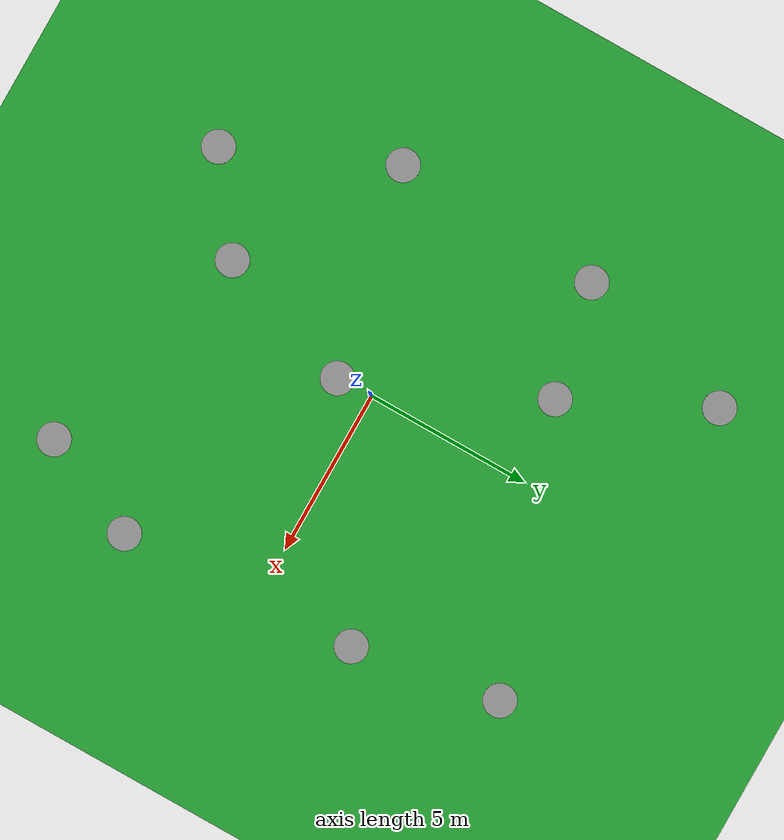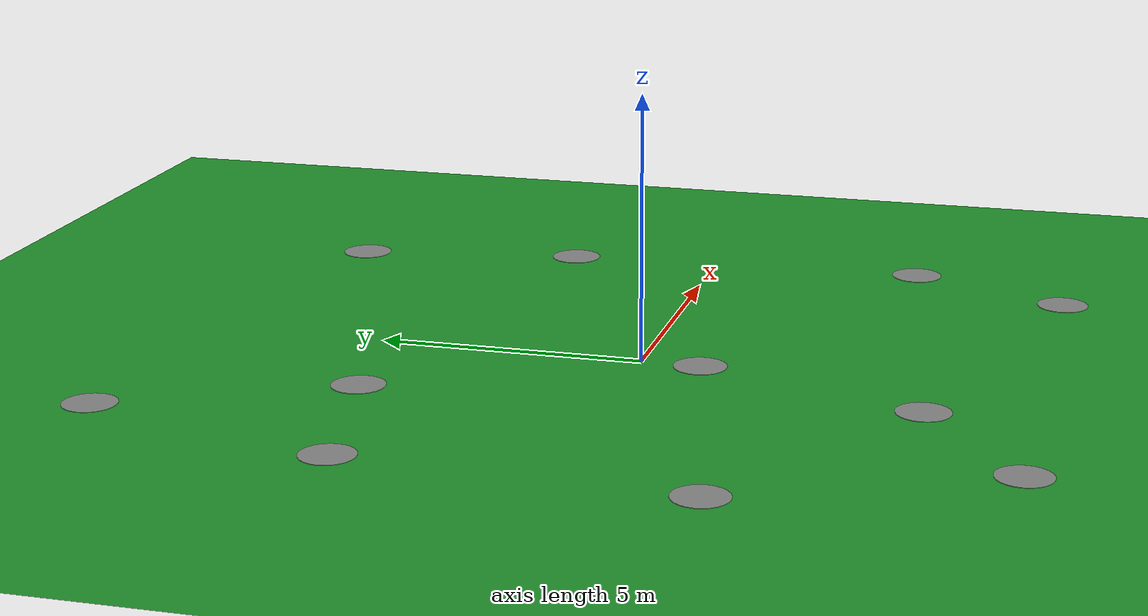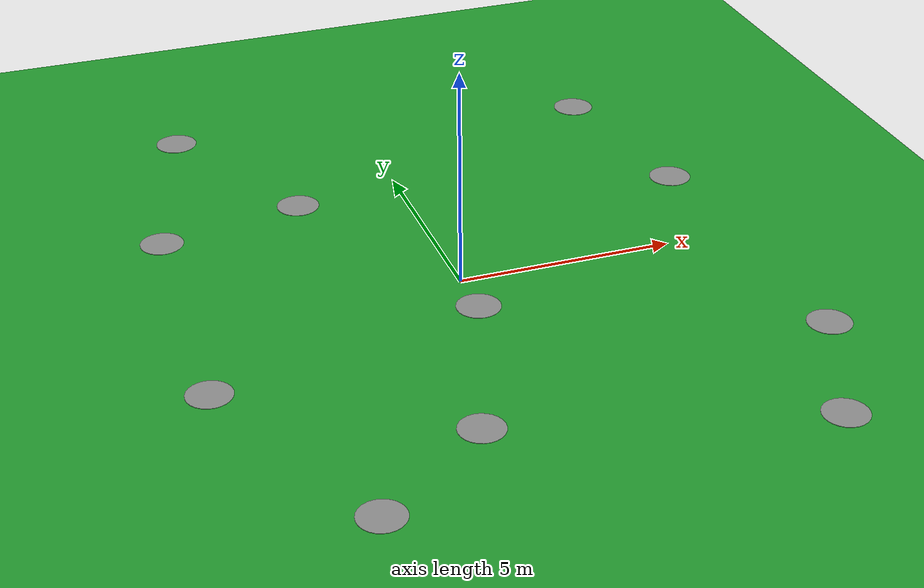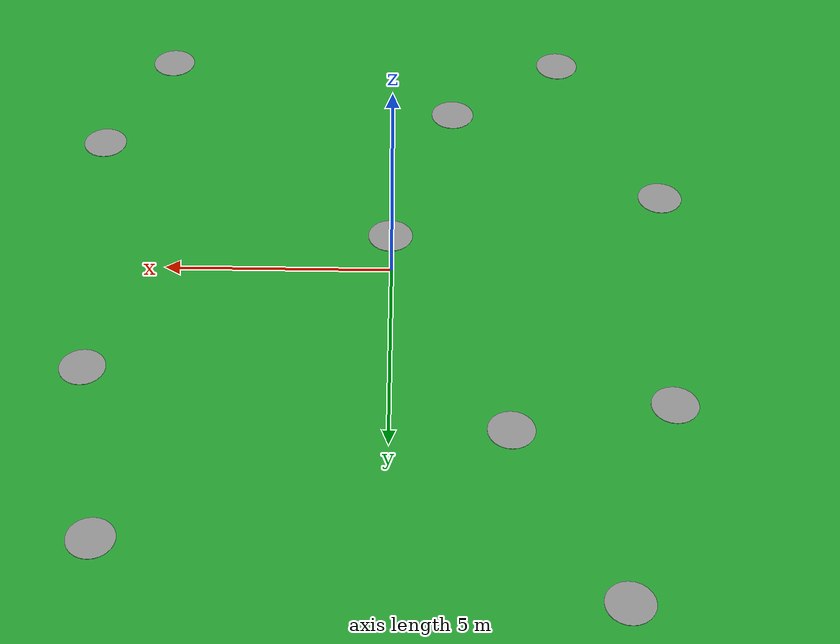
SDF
<?xml version="1.0" ?>
<sdf version="1.5">
  <model name="green_plane">
    <static>true</static>
    <link name="link">
      <collision name="collision">
        <geometry>
          <plane>
            <normal>0 0 1</normal>
            <size>100 100</size>
          </plane>
        </geometry>
        <surface>
          <friction>
            <ode>
              <mu>100</mu>
              <mu2>50</mu2>
            </ode>
          </friction>
        </surface>
      </collision>
      <visual name="visual">
        <cast_shadows>false</cast_shadows>
        <geometry>
          <plane>
            <normal>0 0 1</normal>
            <size>100 100</size>
          </plane>
        </geometry>
        <material>
          <script>
            <uri>file://media/materials/scripts/gazebo.material</uri>
            <name>Gazebo/Green</name>
          </script>
        </material>
      </visual>
    </link>

    <link name='potholes'>
      <inertial>
        <mass>1</mass>
        <inertia>
          <ixx>0.145833</ixx>
          <ixy>0</ixy>
          <ixz>0</ixz>
          <iyy>0.145833</iyy>
          <iyz>0</iyz>
          <izz>0.125</izz>
        </inertia>
        <pose>0 0 0 0 -0 0</pose>
      </inertial>
      <pose>0.031259 -1.09951 -0 0 -0 0</pose>
      <gravity>1</gravity>
      <self_collide>0</self_collide>
      <kinematic>0</kinematic>
      <enable_wind>0</enable_wind>
      <visual name='visual'>
        <pose>0 0 0 0 -0 0</pose>
        <geometry>
          <cylinder>
            <radius>0.5</radius>
            <length>0.01</length>
          </cylinder>
        </geometry>
        <material>
          <lighting>1</lighting>
          <script>
            <uri>file://media/materials/scripts/gazebo.material</uri>
            <name>Gazebo/Grey</name>
          </script>
          <shader type='pixel'>
            <normal_map>__default__</normal_map>
          </shader>
          <ambient>1 1 1 1</ambient>
          <diffuse>1 1 1 1</diffuse>
          <specular>1 1 1 1</specular>
          <emissive>1 1 1 1</emissive>
        </material>
        <transparency>0</transparency>
        <cast_shadows>1</cast_shadows>
      </visual>
      <collision name='collision'>
        <laser_retro>0</laser_retro>
        <max_contacts>10</max_contacts>
        <pose>0 0 0 0 -0 0</pose>
        <geometry>
          <cylinder>
            <radius>0.5</radius>
            <length>0.01</length>
          </cylinder>
        </geometry>
        <surface>
          <friction>
            <ode>
              <mu>1</mu>
              <mu2>1</mu2>
              <fdir1>0 0 0</fdir1>
              <slip1>0</slip1>
              <slip2>0</slip2>
            </ode>
            <torsional>
              <coefficient>1</coefficient>
              <patch_radius>0</patch_radius>
              <surface_radius>0</surface_radius>
              <use_patch_radius>1</use_patch_radius>
              <ode>
                <slip>0</slip>
              </ode>
            </torsional>
          </friction>
          <bounce>
            <restitution_coefficient>0</restitution_coefficient>
            <threshold>1e+06</threshold>
          </bounce>
          <contact>
            <collide_without_contact>0</collide_without_contact>
            <collide_without_contact_bitmask>1</collide_without_contact_bitmask>
            <collide_bitmask>1</collide_bitmask>
            <ode>
              <soft_cfm>0</soft_cfm>
              <soft_erp>0.2</soft_erp>
              <kp>1e+13</kp>
              <kd>1</kd>
              <max_vel>0.01</max_vel>
              <min_depth>0</min_depth>
            </ode>
            <bullet>
              <split_impulse>1</split_impulse>
              <split_impulse_penetration_threshold>-0.01</split_impulse_penetration_threshold>
              <soft_cfm>0</soft_cfm>
              <soft_erp>0.2</soft_erp>
              <kp>1e+13</kp>
              <kd>1</kd>
            </bullet>
          </contact>
        </surface>
      </collision>
    </link>
    <link name='link_0_clone'>
      <inertial>
        <mass>1</mass>
        <inertia>
          <ixx>0.145833</ixx>
          <ixy>0</ixy>
          <ixz>0</ixz>
          <iyy>0.145833</iyy>
          <iyz>0</iyz>
          <izz>0.125</izz>
        </inertia>
        <pose>0 0 0 0 -0 0</pose>
      </inertial>
      <pose>-2.49838 4.57653 -0 0 -0 0</pose>
      <gravity>1</gravity>
      <self_collide>0</self_collide>
      <kinematic>0</kinematic>
      <enable_wind>0</enable_wind>
      <visual name='visual'>
        <pose>0 0 0 0 -0 0</pose>
        <geometry>
          <cylinder>
            <radius>0.5</radius>
            <length>0.01</length>
          </cylinder>
        </geometry>
        <material>
          <lighting>1</lighting>
          <script>
            <uri>file://media/materials/scripts/gazebo.material</uri>
            <name>Gazebo/Grey</name>
          </script>
          <shader type='pixel'>
            <normal_map>__default__</normal_map>
          </shader>
          <ambient>1 1 1 1</ambient>
          <diffuse>1 1 1 1</diffuse>
          <specular>1 1 1 1</specular>
          <emissive>1 1 1 1</emissive>
        </material>
        <transparency>0</transparency>
        <cast_shadows>1</cast_shadows>
      </visual>
      <collision name='collision'>
        <laser_retro>0</laser_retro>
        <max_contacts>10</max_contacts>
        <pose>0 0 0 0 -0 0</pose>
        <geometry>
          <cylinder>
            <radius>0.5</radius>
            <length>0.01</length>
          </cylinder>
        </geometry>
        <surface>
          <friction>
            <ode>
              <mu>1</mu>
              <mu2>1</mu2>
              <fdir1>0 0 0</fdir1>
              <slip1>0</slip1>
              <slip2>0</slip2>
            </ode>
            <torsional>
              <coefficient>1</coefficient>
              <patch_radius>0</patch_radius>
              <surface_radius>0</surface_radius>
              <use_patch_radius>1</use_patch_radius>
              <ode>
                <slip>0</slip>
              </ode>
            </torsional>
          </friction>
          <bounce>
            <restitution_coefficient>0</restitution_coefficient>
            <threshold>1e+06</threshold>
          </bounce>
          <contact>
            <collide_without_contact>0</collide_without_contact>
            <collide_without_contact_bitmask>1</collide_without_contact_bitmask>
            <collide_bitmask>1</collide_bitmask>
            <ode>
              <soft_cfm>0</soft_cfm>
              <soft_erp>0.2</soft_erp>
              <kp>1e+13</kp>
              <kd>1</kd>
              <max_vel>0.01</max_vel>
              <min_depth>0</min_depth>
            </ode>
            <bullet>
              <split_impulse>1</split_impulse>
              <split_impulse_penetration_threshold>-0.01</split_impulse_penetration_threshold>
              <soft_cfm>0</soft_cfm>
              <soft_erp>0.2</soft_erp>
              <kp>1e+13</kp>
              <kd>1</kd>
            </bullet>
          </contact>
        </surface>
      </collision>
    </link>
    <link name='link_0_clone_0'>
      <inertial>
        <mass>1</mass>
        <inertia>
          <ixx>0.145833</ixx>
          <ixy>0</ixy>
          <ixz>0</ixz>
          <iyy>0.145833</iyy>
          <iyz>0</iyz>
          <izz>0.125</izz>
        </inertia>
        <pose>0 0 0 0 -0 0</pose>
      </inertial>
      <pose>5.72944 7.42983 -0 0 -0 0</pose>
      <gravity>1</gravity>
      <self_collide>0</self_collide>
      <kinematic>0</kinematic>
      <enable_wind>0</enable_wind>
      <visual name='visual'>
        <pose>0 0 0 0 -0 0</pose>
        <geometry>
          <cylinder>
            <radius>0.5</radius>
            <length>0.01</length>
          </cylinder>
        </geometry>
        <material>
          <lighting>1</lighting>
          <script>
            <uri>file://media/materials/scripts/gazebo.material</uri>
            <name>Gazebo/Grey</name>
          </script>
          <shader type='pixel'>
            <normal_map>__default__</normal_map>
          </shader>
          <ambient>1 1 1 1</ambient>
          <diffuse>1 1 1 1</diffuse>
          <specular>1 1 1 1</specular>
          <emissive>1 1 1 1</emissive>
        </material>
        <transparency>0</transparency>
        <cast_shadows>1</cast_shadows>
      </visual>
      <collision name='collision'>
        <laser_retro>0</laser_retro>
        <max_contacts>10</max_contacts>
        <pose>0 0 0 0 -0 0</pose>
        <geometry>
          <cylinder>
            <radius>0.5</radius>
            <length>0.01</length>
          </cylinder>
        </geometry>
        <surface>
          <friction>
            <ode>
              <mu>1</mu>
              <mu2>1</mu2>
              <fdir1>0 0 0</fdir1>
              <slip1>0</slip1>
              <slip2>0</slip2>
            </ode>
            <torsional>
              <coefficient>1</coefficient>
              <patch_radius>0</patch_radius>
              <surface_radius>0</surface_radius>
              <use_patch_radius>1</use_patch_radius>
              <ode>
                <slip>0</slip>
              </ode>
            </torsional>
          </friction>
          <bounce>
            <restitution_coefficient>0</restitution_coefficient>
            <threshold>1e+06</threshold>
          </bounce>
          <contact>
            <collide_without_contact>0</collide_without_contact>
            <collide_without_contact_bitmask>1</collide_without_contact_bitmask>
            <collide_bitmask>1</collide_bitmask>
            <ode>
              <soft_cfm>0</soft_cfm>
              <soft_erp>0.2</soft_erp>
              <kp>1e+13</kp>
              <kd>1</kd>
              <max_vel>0.01</max_vel>
              <min_depth>0</min_depth>
            </ode>
            <bullet>
              <split_impulse>1</split_impulse>
              <split_impulse_penetration_threshold>-0.01</split_impulse_penetration_threshold>
              <soft_cfm>0</soft_cfm>
              <soft_erp>0.2</soft_erp>
              <kp>1e+13</kp>
              <kd>1</kd>
            </bullet>
          </contact>
        </surface>
      </collision>
    </link>
    <link name='link_0_clone_1'>
      <inertial>
        <mass>1</mass>
        <inertia>
          <ixx>0.145833</ixx>
          <ixy>0</ixy>
          <ixz>0</ixz>
          <iyy>0.145833</iyy>
          <iyz>0</iyz>
          <izz>0.125</izz>
        </inertia>
        <pose>0 0 0 0 -0 0</pose>
      </inertial>
      <pose>6.46924 2.99584 -0 0 -0 0</pose>
      <gravity>1</gravity>
      <self_collide>0</self_collide>
      <kinematic>0</kinematic>
      <enable_wind>0</enable_wind>
      <visual name='visual'>
        <pose>0 0 0 0 -0 0</pose>
        <geometry>
          <cylinder>
            <radius>0.5</radius>
            <length>0.01</length>
          </cylinder>
        </geometry>
        <material>
          <lighting>1</lighting>
          <script>
            <uri>file://media/materials/scripts/gazebo.material</uri>
            <name>Gazebo/Grey</name>
          </script>
          <shader type='pixel'>
            <normal_map>__default__</normal_map>
          </shader>
          <ambient>1 1 1 1</ambient>
          <diffuse>1 1 1 1</diffuse>
          <specular>1 1 1 1</specular>
          <emissive>1 1 1 1</emissive>
        </material>
        <transparency>0</transparency>
        <cast_shadows>1</cast_shadows>
      </visual>
      <collision name='collision'>
        <laser_retro>0</laser_retro>
        <max_contacts>10</max_contacts>
        <pose>0 0 0 0 -0 0</pose>
        <geometry>
          <cylinder>
            <radius>0.5</radius>
            <length>0.01</length>
          </cylinder>
        </geometry>
        <surface>
          <friction>
            <ode>
              <mu>1</mu>
              <mu2>1</mu2>
              <fdir1>0 0 0</fdir1>
              <slip1>0</slip1>
              <slip2>0</slip2>
            </ode>
            <torsional>
              <coefficient>1</coefficient>
              <patch_radius>0</patch_radius>
              <surface_radius>0</surface_radius>
              <use_patch_radius>1</use_patch_radius>
              <ode>
                <slip>0</slip>
              </ode>
            </torsional>
          </friction>
          <bounce>
            <restitution_coefficient>0</restitution_coefficient>
            <threshold>1e+06</threshold>
          </bounce>
          <contact>
            <collide_without_contact>0</collide_without_contact>
            <collide_without_contact_bitmask>1</collide_without_contact_bitmask>
            <collide_bitmask>1</collide_bitmask>
            <ode>
              <soft_cfm>0</soft_cfm>
              <soft_erp>0.2</soft_erp>
              <kp>1e+13</kp>
              <kd>1</kd>
              <max_vel>0.01</max_vel>
              <min_depth>0</min_depth>
            </ode>
            <bullet>
              <split_impulse>1</split_impulse>
              <split_impulse_penetration_threshold>-0.01</split_impulse_penetration_threshold>
              <soft_cfm>0</soft_cfm>
              <soft_erp>0.2</soft_erp>
              <kp>1e+13</kp>
              <kd>1</kd>
            </bullet>
          </contact>
        </surface>
      </collision>
    </link>
    <link name='link_0_clone_2'>
      <inertial>
        <mass>1</mass>
        <inertia>
          <ixx>0.145833</ixx>
          <ixy>0</ixy>
          <ixz>0</ixz>
          <iyy>0.145833</iyy>
          <iyz>0</iyz>
          <izz>0.125</izz>
        </inertia>
        <pose>0 0 0 0 -0 0</pose>
      </inertial>
      <pose>-6.1582 -2.45288 -0 0 -0 0</pose>
      <gravity>1</gravity>
      <self_collide>0</self_collide>
      <kinematic>0</kinematic>
      <enable_wind>0</enable_wind>
      <visual name='visual'>
        <pose>0 0 0 0 -0 0</pose>
        <geometry>
          <cylinder>
            <radius>0.5</radius>
            <length>0.01</length>
          </cylinder>
        </geometry>
        <material>
          <lighting>1</lighting>
          <script>
            <uri>file://media/materials/scripts/gazebo.material</uri>
            <name>Gazebo/Grey</name>
          </script>
          <shader type='pixel'>
            <normal_map>__default__</normal_map>
          </shader>
          <ambient>1 1 1 1</ambient>
          <diffuse>1 1 1 1</diffuse>
          <specular>1 1 1 1</specular>
          <emissive>1 1 1 1</emissive>
        </material>
        <transparency>0</transparency>
        <cast_shadows>1</cast_shadows>
      </visual>
      <collision name='collision'>
        <laser_retro>0</laser_retro>
        <max_contacts>10</max_contacts>
        <pose>0 0 0 0 -0 0</pose>
        <geometry>
          <cylinder>
            <radius>0.5</radius>
            <length>0.01</length>
          </cylinder>
        </geometry>
        <surface>
          <friction>
            <ode>
              <mu>1</mu>
              <mu2>1</mu2>
              <fdir1>0 0 0</fdir1>
              <slip1>0</slip1>
              <slip2>0</slip2>
            </ode>
            <torsional>
              <coefficient>1</coefficient>
              <patch_radius>0</patch_radius>
              <surface_radius>0</surface_radius>
              <use_patch_radius>1</use_patch_radius>
              <ode>
                <slip>0</slip>
              </ode>
            </torsional>
          </friction>
          <bounce>
            <restitution_coefficient>0</restitution_coefficient>
            <threshold>1e+06</threshold>
          </bounce>
          <contact>
            <collide_without_contact>0</collide_without_contact>
            <collide_without_contact_bitmask>1</collide_without_contact_bitmask>
            <collide_bitmask>1</collide_bitmask>
            <ode>
              <soft_cfm>0</soft_cfm>
              <soft_erp>0.2</soft_erp>
              <kp>1e+13</kp>
              <kd>1</kd>
              <max_vel>0.01</max_vel>
              <min_depth>0</min_depth>
            </ode>
            <bullet>
              <split_impulse>1</split_impulse>
              <split_impulse_penetration_threshold>-0.01</split_impulse_penetration_threshold>
              <soft_cfm>0</soft_cfm>
              <soft_erp>0.2</soft_erp>
              <kp>1e+13</kp>
              <kd>1</kd>
            </bullet>
          </contact>
        </surface>
      </collision>
    </link>
    <link name='link_0_clone_3'>
      <inertial>
        <mass>1</mass>
        <inertia>
          <ixx>0.145833</ixx>
          <ixy>0</ixy>
          <ixz>0</ixz>
          <iyy>0.145833</iyy>
          <iyz>0</iyz>
          <izz>0.125</izz>
        </inertia>
        <pose>0 0 0 0 -0 0</pose>
      </inertial>
      <pose>-1.41884 -5.34785 -0 0 -0 0</pose>
      <gravity>1</gravity>
      <self_collide>0</self_collide>
      <kinematic>0</kinematic>
      <enable_wind>0</enable_wind>
      <visual name='visual'>
        <pose>0 0 0 0 -0 0</pose>
        <geometry>
          <cylinder>
            <radius>0.5</radius>
            <length>0.01</length>
          </cylinder>
        </geometry>
        <material>
          <lighting>1</lighting>
          <script>
            <uri>file://media/materials/scripts/gazebo.material</uri>
            <name>Gazebo/Grey</name>
          </script>
          <shader type='pixel'>
            <normal_map>__default__</normal_map>
          </shader>
          <ambient>1 1 1 1</ambient>
          <diffuse>1 1 1 1</diffuse>
          <specular>1 1 1 1</specular>
          <emissive>1 1 1 1</emissive>
        </material>
        <transparency>0</transparency>
        <cast_shadows>1</cast_shadows>
      </visual>
      <collision name='collision'>
        <laser_retro>0</laser_retro>
        <max_contacts>10</max_contacts>
        <pose>0 0 0 0 -0 0</pose>
        <geometry>
          <cylinder>
            <radius>0.5</radius>
            <length>0.01</length>
          </cylinder>
        </geometry>
        <surface>
          <friction>
            <ode>
              <mu>1</mu>
              <mu2>1</mu2>
              <fdir1>0 0 0</fdir1>
              <slip1>0</slip1>
              <slip2>0</slip2>
            </ode>
            <torsional>
              <coefficient>1</coefficient>
              <patch_radius>0</patch_radius>
              <surface_radius>0</surface_radius>
              <use_patch_radius>1</use_patch_radius>
              <ode>
                <slip>0</slip>
              </ode>
            </torsional>
          </friction>
          <bounce>
            <restitution_coefficient>0</restitution_coefficient>
            <threshold>1e+06</threshold>
          </bounce>
          <contact>
            <collide_without_contact>0</collide_without_contact>
            <collide_without_contact_bitmask>1</collide_without_contact_bitmask>
            <collide_bitmask>1</collide_bitmask>
            <ode>
              <soft_cfm>0</soft_cfm>
              <soft_erp>0.2</soft_erp>
              <kp>1e+13</kp>
              <kd>1</kd>
              <max_vel>0.01</max_vel>
              <min_depth>0</min_depth>
            </ode>
            <bullet>
              <split_impulse>1</split_impulse>
              <split_impulse_penetration_threshold>-0.01</split_impulse_penetration_threshold>
              <soft_cfm>0</soft_cfm>
              <soft_erp>0.2</soft_erp>
              <kp>1e+13</kp>
              <kd>1</kd>
            </bullet>
          </contact>
        </surface>
      </collision>
    </link>
    <link name='link_0_clone_4'>
      <inertial>
        <mass>1</mass>
        <inertia>
          <ixx>0.145833</ixx>
          <ixy>0</ixy>
          <ixz>0</ixz>
          <iyy>0.145833</iyy>
          <iyz>0</iyz>
          <izz>0.125</izz>
        </inertia>
        <pose>0 0 0 0 -0 0</pose>
      </inertial>
      <pose>-4.03537 -7.27868 -0 0 -0 0</pose>
      <gravity>1</gravity>
      <self_collide>0</self_collide>
      <kinematic>0</kinematic>
      <enable_wind>0</enable_wind>
      <visual name='visual'>
        <pose>0 0 0 0 -0 0</pose>
        <geometry>
          <cylinder>
            <radius>0.5</radius>
            <length>0.01</length>
          </cylinder>
        </geometry>
        <material>
          <lighting>1</lighting>
          <script>
            <uri>file://media/materials/scripts/gazebo.material</uri>
            <name>Gazebo/Grey</name>
          </script>
          <shader type='pixel'>
            <normal_map>__default__</normal_map>
          </shader>
          <ambient>1 1 1 1</ambient>
          <diffuse>1 1 1 1</diffuse>
          <specular>1 1 1 1</specular>
          <emissive>1 1 1 1</emissive>
        </material>
        <transparency>0</transparency>
        <cast_shadows>1</cast_shadows>
      </visual>
      <collision name='collision'>
        <laser_retro>0</laser_retro>
        <max_contacts>10</max_contacts>
        <pose>0 0 0 0 -0 0</pose>
        <geometry>
          <cylinder>
            <radius>0.5</radius>
            <length>0.01</length>
          </cylinder>
        </geometry>
        <surface>
          <friction>
            <ode>
              <mu>1</mu>
              <mu2>1</mu2>
              <fdir1>0 0 0</fdir1>
              <slip1>0</slip1>
              <slip2>0</slip2>
            </ode>
            <torsional>
              <coefficient>1</coefficient>
              <patch_radius>0</patch_radius>
              <surface_radius>0</surface_radius>
              <use_patch_radius>1</use_patch_radius>
              <ode>
                <slip>0</slip>
              </ode>
            </torsional>
          </friction>
          <bounce>
            <restitution_coefficient>0</restitution_coefficient>
            <threshold>1e+06</threshold>
          </bounce>
          <contact>
            <collide_without_contact>0</collide_without_contact>
            <collide_without_contact_bitmask>1</collide_without_contact_bitmask>
            <collide_bitmask>1</collide_bitmask>
            <ode>
              <soft_cfm>0</soft_cfm>
              <soft_erp>0.2</soft_erp>
              <kp>1e+13</kp>
              <kd>1</kd>
              <max_vel>0.01</max_vel>
              <min_depth>0</min_depth>
            </ode>
            <bullet>
              <split_impulse>1</split_impulse>
              <split_impulse_penetration_threshold>-0.01</split_impulse_penetration_threshold>
              <soft_cfm>0</soft_cfm>
              <soft_erp>0.2</soft_erp>
              <kp>1e+13</kp>
              <kd>1</kd>
            </bullet>
          </contact>
        </surface>
      </collision>
    </link>
    <link name='link_0_clone_5'>
      <inertial>
        <mass>1</mass>
        <inertia>
          <ixx>0.145833</ixx>
          <ixy>0</ixy>
          <ixz>0</ixz>
          <iyy>0.145833</iyy>
          <iyz>0</iyz>
          <izz>0.125</izz>
        </inertia>
        <pose>0 0 0 0 -0 0</pose>
      </inertial>
      <pose>5.50176 -7.24971 -0 0 -0 0</pose>
      <gravity>1</gravity>
      <self_collide>0</self_collide>
      <kinematic>0</kinematic>
      <enable_wind>0</enable_wind>
      <visual name='visual'>
        <pose>0 0 0 0 -0 0</pose>
        <geometry>
          <cylinder>
            <radius>0.5</radius>
            <length>0.01</length>
          </cylinder>
        </geometry>
        <material>
          <lighting>1</lighting>
          <script>
            <uri>file://media/materials/scripts/gazebo.material</uri>
            <name>Gazebo/Grey</name>
          </script>
          <shader type='pixel'>
            <normal_map>__default__</normal_map>
          </shader>
          <ambient>1 1 1 1</ambient>
          <diffuse>1 1 1 1</diffuse>
          <specular>1 1 1 1</specular>
          <emissive>1 1 1 1</emissive>
        </material>
        <transparency>0</transparency>
        <cast_shadows>1</cast_shadows>
      </visual>
      <collision name='collision'>
        <laser_retro>0</laser_retro>
        <max_contacts>10</max_contacts>
        <pose>0 0 0 0 -0 0</pose>
        <geometry>
          <cylinder>
            <radius>0.5</radius>
            <length>0.01</length>
          </cylinder>
        </geometry>
        <surface>
          <friction>
            <ode>
              <mu>1</mu>
              <mu2>1</mu2>
              <fdir1>0 0 0</fdir1>
              <slip1>0</slip1>
              <slip2>0</slip2>
            </ode>
            <torsional>
              <coefficient>1</coefficient>
              <patch_radius>0</patch_radius>
              <surface_radius>0</surface_radius>
              <use_patch_radius>1</use_patch_radius>
              <ode>
                <slip>0</slip>
              </ode>
            </torsional>
          </friction>
          <bounce>
            <restitution_coefficient>0</restitution_coefficient>
            <threshold>1e+06</threshold>
          </bounce>
          <contact>
            <collide_without_contact>0</collide_without_contact>
            <collide_without_contact_bitmask>1</collide_without_contact_bitmask>
            <collide_bitmask>1</collide_bitmask>
            <ode>
              <soft_cfm>0</soft_cfm>
              <soft_erp>0.2</soft_erp>
              <kp>1e+13</kp>
              <kd>1</kd>
              <max_vel>0.01</max_vel>
              <min_depth>0</min_depth>
            </ode>
            <bullet>
              <split_impulse>1</split_impulse>
              <split_impulse_penetration_threshold>-0.01</split_impulse_penetration_threshold>
              <soft_cfm>0</soft_cfm>
              <soft_erp>0.2</soft_erp>
              <kp>1e+13</kp>
              <kd>1</kd>
            </bullet>
          </contact>
        </surface>
      </collision>
    </link>
    <link name='link_0_clone_6'>
      <inertial>
        <mass>1</mass>
        <inertia>
          <ixx>0.145833</ixx>
          <ixy>0</ixy>
          <ixz>0</ixz>
          <iyy>0.145833</iyy>
          <iyz>0</iyz>
          <izz>0.125</izz>
        </inertia>
        <pose>0 0 0 0 -0 0</pose>
      </inertial>
      <pose>6.85476 -4.19351 -0 0 -0 0</pose>
      <gravity>1</gravity>
      <self_collide>0</self_collide>
      <kinematic>0</kinematic>
      <enable_wind>0</enable_wind>
      <visual name='visual'>
        <pose>0 0 0 0 -0 0</pose>
        <geometry>
          <cylinder>
            <radius>0.5</radius>
            <length>0.01</length>
          </cylinder>
        </geometry>
        <material>
          <lighting>1</lighting>
          <script>
            <uri>file://media/materials/scripts/gazebo.material</uri>
            <name>Gazebo/Grey</name>
          </script>
          <shader type='pixel'>
            <normal_map>__default__</normal_map>
          </shader>
          <ambient>1 1 1 1</ambient>
          <diffuse>1 1 1 1</diffuse>
          <specular>1 1 1 1</specular>
          <emissive>1 1 1 1</emissive>
        </material>
        <transparency>0</transparency>
        <cast_shadows>1</cast_shadows>
      </visual>
      <collision name='collision'>
        <laser_retro>0</laser_retro>
        <max_contacts>10</max_contacts>
        <pose>0 0 0 0 -0 0</pose>
        <geometry>
          <cylinder>
            <radius>0.5</radius>
            <length>0.01</length>
          </cylinder>
        </geometry>
        <surface>
          <friction>
            <ode>
              <mu>1</mu>
              <mu2>1</mu2>
              <fdir1>0 0 0</fdir1>
              <slip1>0</slip1>
              <slip2>0</slip2>
            </ode>
            <torsional>
              <coefficient>1</coefficient>
              <patch_radius>0</patch_radius>
              <surface_radius>0</surface_radius>
              <use_patch_radius>1</use_patch_radius>
              <ode>
                <slip>0</slip>
              </ode>
            </torsional>
          </friction>
          <bounce>
            <restitution_coefficient>0</restitution_coefficient>
            <threshold>1e+06</threshold>
          </bounce>
          <contact>
            <collide_without_contact>0</collide_without_contact>
            <collide_without_contact_bitmask>1</collide_without_contact_bitmask>
            <collide_bitmask>1</collide_bitmask>
            <ode>
              <soft_cfm>0</soft_cfm>
              <soft_erp>0.2</soft_erp>
              <kp>1e+13</kp>
              <kd>1</kd>
              <max_vel>0.01</max_vel>
              <min_depth>0</min_depth>
            </ode>
            <bullet>
              <split_impulse>1</split_impulse>
              <split_impulse_penetration_threshold>-0.01</split_impulse_penetration_threshold>
              <soft_cfm>0</soft_cfm>
              <soft_erp>0.2</soft_erp>
              <kp>1e+13</kp>
              <kd>1</kd>
            </bullet>
          </contact>
        </surface>
      </collision>
    </link>
    <link name='link_0_clone_7'>
      <inertial>
        <mass>1</mass>
        <inertia>
          <ixx>0.145833</ixx>
          <ixy>0</ixy>
          <ixz>0</ixz>
          <iyy>0.145833</iyy>
          <iyz>0</iyz>
          <izz>0.125</izz>
        </inertia>
        <pose>0 0 0 0 -0 0</pose>
      </inertial>
      <pose>-4.57892 8.76963 -0 0 -0 0</pose>
      <gravity>1</gravity>
      <self_collide>0</self_collide>
      <kinematic>0</kinematic>
      <enable_wind>0</enable_wind>
      <visual name='visual'>
        <pose>0 0 0 0 -0 0</pose>
        <geometry>
          <cylinder>
            <radius>0.5</radius>
            <length>0.01</length>
          </cylinder>
        </geometry>
        <material>
          <lighting>1</lighting>
          <script>
            <uri>file://media/materials/scripts/gazebo.material</uri>
            <name>Gazebo/Grey</name>
          </script>
          <shader type='pixel'>
            <normal_map>__default__</normal_map>
          </shader>
          <ambient>1 1 1 1</ambient>
          <diffuse>1 1 1 1</diffuse>
          <specular>1 1 1 1</specular>
          <emissive>1 1 1 1</emissive>
        </material>
        <transparency>0</transparency>
        <cast_shadows>1</cast_shadows>
      </visual>
      <collision name='collision'>
        <laser_retro>0</laser_retro>
        <max_contacts>10</max_contacts>
        <pose>0 0 0 0 -0 0</pose>
        <geometry>
          <cylinder>
            <radius>0.5</radius>
            <length>0.01</length>
          </cylinder>
        </geometry>
        <surface>
          <friction>
            <ode>
              <mu>1</mu>
              <mu2>1</mu2>
              <fdir1>0 0 0</fdir1>
              <slip1>0</slip1>
              <slip2>0</slip2>
            </ode>
            <torsional>
              <coefficient>1</coefficient>
              <patch_radius>0</patch_radius>
              <surface_radius>0</surface_radius>
              <use_patch_radius>1</use_patch_radius>
              <ode>
                <slip>0</slip>
              </ode>
            </torsional>
          </friction>
          <bounce>
            <restitution_coefficient>0</restitution_coefficient>
            <threshold>1e+06</threshold>
          </bounce>
          <contact>
            <collide_without_contact>0</collide_without_contact>
            <collide_without_contact_bitmask>1</collide_without_contact_bitmask>
            <collide_bitmask>1</collide_bitmask>
            <ode>
              <soft_cfm>0</soft_cfm>
              <soft_erp>0.2</soft_erp>
              <kp>1e+13</kp>
              <kd>1</kd>
              <max_vel>0.01</max_vel>
              <min_depth>0</min_depth>
            </ode>
            <bullet>
              <split_impulse>1</split_impulse>
              <split_impulse_penetration_threshold>-0.01</split_impulse_penetration_threshold>
              <soft_cfm>0</soft_cfm>
              <soft_erp>0.2</soft_erp>
              <kp>1e+13</kp>
              <kd>1</kd>
            </bullet>
          </contact>
        </surface>
      </collision>
    </link>
    <link name='link_0_clone_8'>
      <inertial>
        <mass>1</mass>
        <inertia>
          <ixx>0.145833</ixx>
          <ixy>0</ixy>
          <ixz>0</ixz>
          <iyy>0.145833</iyy>
          <iyz>0</iyz>
          <izz>0.125</izz>
        </inertia>
        <pose>0 0 0 0 -0 0</pose>
      </inertial>
      <pose>-5.89674 3.8503 -0 0 -0 0</pose>
      <gravity>1</gravity>
      <self_collide>0</self_collide>
      <kinematic>0</kinematic>
      <enable_wind>0</enable_wind>
      <visual name='visual'>
        <pose>0 0 0 0 -0 0</pose>
        <geometry>
          <cylinder>
            <radius>0.5</radius>
            <length>0.01</length>
          </cylinder>
        </geometry>
        <material>
          <lighting>1</lighting>
          <script>
            <uri>file://media/materials/scripts/gazebo.material</uri>
            <name>Gazebo/Grey</name>
          </script>
          <shader type='pixel'>
            <normal_map>__default__</normal_map>
          </shader>
          <ambient>1 1 1 1</ambient>
          <diffuse>1 1 1 1</diffuse>
          <specular>1 1 1 1</specular>
          <emissive>1 1 1 1</emissive>
        </material>
        <transparency>0</transparency>
        <cast_shadows>1</cast_shadows>
      </visual>
      <collision name='collision'>
        <laser_retro>0</laser_retro>
        <max_contacts>10</max_contacts>
        <pose>0 0 0 0 -0 0</pose>
        <geometry>
          <cylinder>
            <radius>0.5</radius>
            <length>0.01</length>
          </cylinder>
        </geometry>
        <surface>
          <friction>
            <ode>
              <mu>1</mu>
              <mu2>1</mu2>
              <fdir1>0 0 0</fdir1>
              <slip1>0</slip1>
              <slip2>0</slip2>
            </ode>
            <torsional>
              <coefficient>1</coefficient>
              <patch_radius>0</patch_radius>
              <surface_radius>0</surface_radius>
              <use_patch_radius>1</use_patch_radius>
              <ode>
                <slip>0</slip>
              </ode>
            </torsional>
          </friction>
          <bounce>
            <restitution_coefficient>0</restitution_coefficient>
            <threshold>1e+06</threshold>
          </bounce>
          <contact>
            <collide_without_contact>0</collide_without_contact>
            <collide_without_contact_bitmask>1</collide_without_contact_bitmask>
            <collide_bitmask>1</collide_bitmask>
            <ode>
              <soft_cfm>0</soft_cfm>
              <soft_erp>0.2</soft_erp>
              <kp>1e+13</kp>
              <kd>1</kd>
              <max_vel>0.01</max_vel>
              <min_depth>0</min_depth>
            </ode>
            <bullet>
              <split_impulse>1</split_impulse>
              <split_impulse_penetration_threshold>-0.01</split_impulse_penetration_threshold>
              <soft_cfm>0</soft_cfm>
              <soft_erp>0.2</soft_erp>
              <kp>1e+13</kp>
              <kd>1</kd>
            </bullet>
          </contact>
        </surface>
      </collision>
    </link>
  </model>
</sdf>
